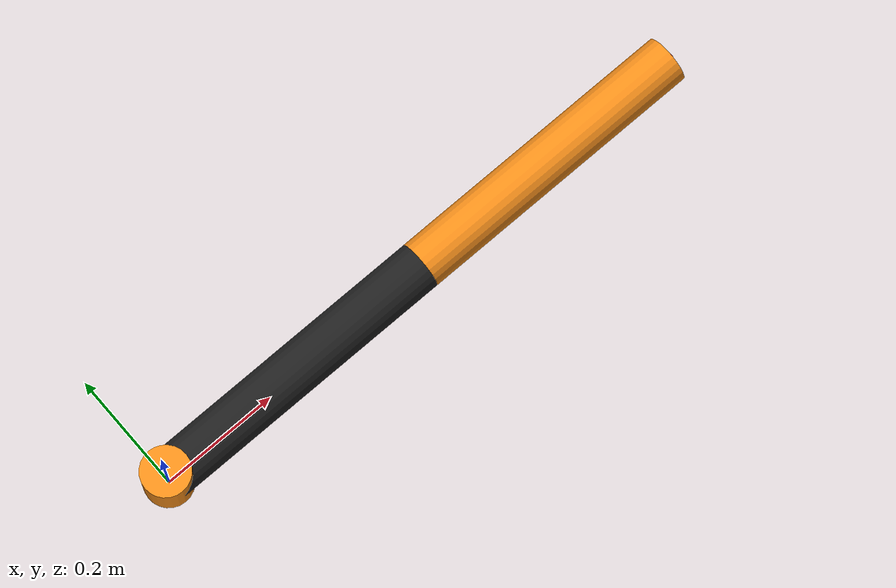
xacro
<?xml version="1.0"?>
<!-- Revolute-Revolute Manipulator -->
<robot name="armbot2_sensor" xmlns:xacro="http://www.ros.org/wiki/xacro">

  <!-- Constants for robot dimensions -->
  <xacro:property name="PI" value="3.1415926535897931"/>
  <xacro:property name="mass" value="1" /> <!-- arbitrary value for mass -->
  <xacro:property name="radius" value="0.04" /> <!-- Cylinder radius -->
  <xacro:property name="height0" value="0.1" /> <!-- Base_Link-->
  <xacro:property name="height1" value="0.5" /> <!-- Link 1 -->
  <xacro:property name="height2" value="0.5" /> <!-- Link 2 -->
  <xacro:property name="sensor_size" value="0.01" /> <!-- Size of square 'camera' box -->
  <xacro:property name="axel_offset" value="0.0" /> <!-- Space btw top of beam and the each joint -->

  <!-- Import all Gazebo-customization elements, including Gazebo colors -->
  <xacro:include filename="$(find armbot2_sensor)/urdf/armbot2_sensor.gazebo" />
  <!-- Import Rviz colors -->
  <xacro:include filename="$(find armbot2_sensor)/urdf/materials.xacro" />

  <!-- Used for fixing robot to Gazebo 'base_link' -->
  <link name="world"/>

  <joint name="joint0" type="fixed">
    <parent link="world"/>
    <child  link="base_link"/>
  </joint>

  <!-- Base Link -->
  <link name="base_link">
    <collision>
      <origin xyz="0 0 ${height0/2}" rpy="0 0 0"/>
      <geometry>
        <cylinder length="${height0}" radius="${radius}"/>
      </geometry>
    </collision>

    <visual>
      <origin xyz="0 0 ${height0/2}" rpy="0 0 0"/>
      <geometry>
	<cylinder length="${height0}" radius="${radius}"/>
      </geometry>
      <material name="orange"/>
    </visual>

    <inertial>
      <origin xyz="0 0 ${height0/2}" rpy="0 0 0"/>
      <mass value="${mass}"/>
      <inertia
	  ixx="${mass / 12.0 * (3*radius*radius + height0*height0)}" ixy="0.0" ixz="0.0"
	  iyy="${mass / 12.0 * (3*radius*radius + height0*height0)}" iyz="0.0"
	  izz="${mass / 2.0  * (radius*radius)}"/>
    </inertial>
  </link>

  <joint name="joint1" type="continuous">
    <parent link="base_link"/>
    <child link="link1"/>
    <origin xyz="0 0 ${height0/2 - axel_offset}" rpy="0 0 0"/>
    <axis xyz="0 0 1"/>
    <dynamics damping="0.7"/>
  </joint>

  <!-- Middle Link -->
  <link name="link1">
    <collision>
      <origin xyz="${height1/2 - axel_offset} 0 0" rpy="0 1.57075 0"/>
      <geometry>
	<cylinder length="${height1}" radius="${radius}"/>
      </geometry>
    </collision>

    <visual>
      <origin xyz="${height1/2 - axel_offset} 0 0" rpy="0 1.57075 0"/>
      <geometry>
	<cylinder length="${height1}" radius="${radius}"/>
      </geometry>
      <material name="black"/>
    </visual>

    <inertial>
      <origin xyz="${height1/2 - axel_offset} 0 0 " rpy="0 1.56075 0"/>
      <mass value="${mass}"/>
      <inertia
          ixx="${mass / 12.0 * (3*radius*radius + height1*height1)}" ixy="0.0" ixz="0.0"
          iyy="${mass / 12.0 * (3*radius*radius + height0*height1)}" iyz="0.0"
          izz="${mass / 2.0  * (radius*radius)}"/>
       </inertial>
  </link>

  <joint name="joint2" type="continuous">
    <parent link="link1"/>
    <child link="link2"/>
    <origin xyz="${height1 - axel_offset*2} 0 0 " rpy="0 0 0"/>
    <axis xyz="0 0 1"/>
    <dynamics damping="0.7"/>
  </joint>

  <!-- Top Link -->
  <link name="link2">
     <collision>
      <origin xyz="${height2/2 - axel_offset} 0 0" rpy="0 1.57075 0"/>
      <geometry>
        <cylinder length="${height2}" radius="${radius}"/>
      </geometry>
     </collision>

    <visual>
      <origin xyz="${height2/2 - axel_offset} 0 0" rpy="0 1.57075 0"/>
      <geometry>
	<cylinder length="${height2}" radius="${radius}"/>
      </geometry>
      <material name="orange"/>
    </visual>

    <inertial>
      <origin xyz="${height2/2 - axel_offset} 0 0" rpy="0 1.57075 0"/>
      <mass value="${mass}"/>
      <inertia
          ixx="${mass / 12.0 * (3*radius*radius + height2*height2)}" ixy="0.0" ixz="0.0"
          iyy="${mass / 12.0 * (3*radius*radius + height2*height2)}" iyz="0.0"
          izz="${mass / 2.0  * (radius*radius)}"/>
      </inertial>
   </link>

  <joint name="joint_sensor" type="continuous">
    <axis xyz="0 1 0" />
    <origin xyz="${height2 - axel_offset/2} 0 0" rpy="0 0 0"/>
    <parent link="link2"/>
    <child link="link_sensor"/>
    <axis xyz="0 0 1"/>
  </joint>

  <link name="link_sensor">
    <collision>
      <origin xyz="0 0 0" rpy="0 0 0"/>
      <geometry>
	<sphere radius="${sensor_size}"/>
      </geometry>
    </collision>

    <visual>
      <origin xyz="0 0 0" rpy="0 0 0"/>
      <geometry>
	<sphere radius="${sensor_size}"/>
      </geometry>
      <material name="red"/>
    </visual>

    <inertial>
      <mass value="1e-5" />
      <origin xyz="0 0 0" rpy="0 0 0"/>
      <inertia ixx="1e-6" ixy="0" ixz="0" iyy="1e-6" iyz="0" izz="1e-6" />
    </inertial>
  </link>

  <transmission name="tran1">
    <type>transmission_interface/SimpleTransmission</type>
    <joint name="joint1">
      <hardwareInterface>EffortJointInterface</hardwareInterface>
    </joint>
    <actuator name="motor1">
      <hardwareInterface>EffortJointInterface</hardwareInterface>
      <mechanicalReduction>1</mechanicalReduction>
    </actuator>
  </transmission>

  <transmission name="tran2">
    <type>transmission_interface/SimpleTransmission</type>
    <joint name="joint2">
      <hardwareInterface>EffortJointInterface</hardwareInterface>
    </joint>
    <actuator name="motor2">
      <hardwareInterface>EffortJointInterface</hardwareInterface>
      <mechanicalReduction>1</mechanicalReduction>
    </actuator>
  </transmission>

</robot>
